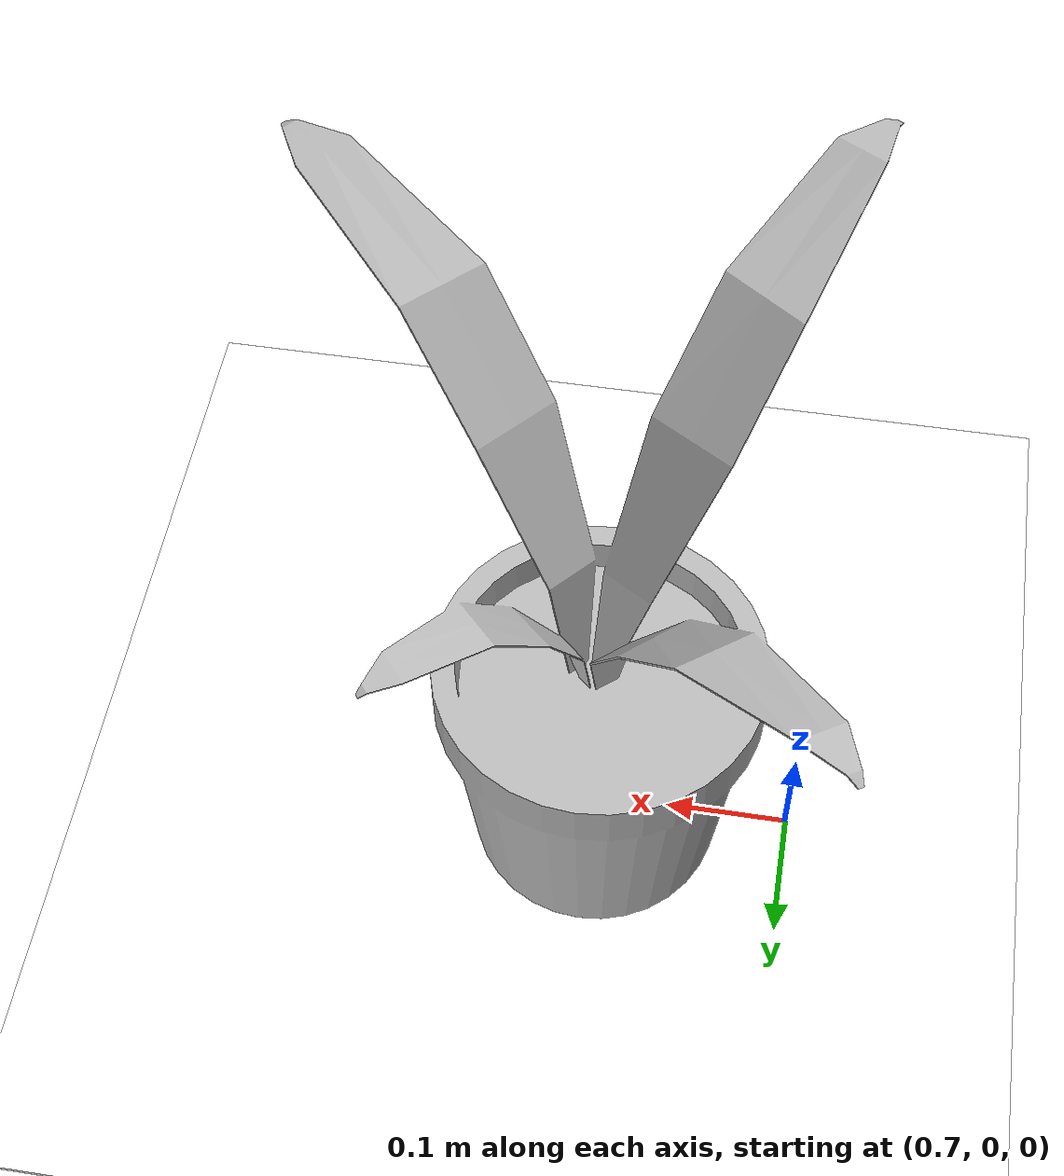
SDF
<?xml version="1.0" ?>
<sdf version="1.8">
  <world name="leaf_bench">
    <plugin filename="ignition-gazebo-physics-system"
            name="gz::sim::systems::Physics"/>
    <plugin filename="ignition-gazebo-user-commands-system"
            name="gz::sim::systems::UserCommands"/>
    <plugin filename="ignition-gazebo-scene-broadcaster-system"
            name="gz::sim::systems::SceneBroadcaster"/>
    <plugin filename="ignition-gazebo-sensors-system"
            name="gz::sim::systems::Sensors">
      <render_engine>ogre2</render_engine>
    </plugin>
    <plugin filename="ignition-gazebo-contact-system"
            name="gz::sim::systems::Contact"/>

    <physics name="default_physics" type="ignored">
      <max_step_size>0.001</max_step_size>
      <real_time_factor>1.0</real_time_factor>
    </physics>
    <gravity>0 0 -9.81</gravity>
    <magnetic_field>0 0 0</magnetic_field>
    <scene>
      <ambient>0.6 0.6 0.6 1</ambient>
      <background>0.85 0.90 0.95 1</background>
      <shadows>true</shadows>
    </scene>

    <light type="directional" name="sun">
      <cast_shadows>true</cast_shadows>
      <pose>0 0 10 0 0 0</pose>
      <diffuse>0.8 0.8 0.8 1</diffuse>
      <specular>0.2 0.2 0.2 1</specular>
      <direction>-0.5 0.2 -0.9</direction>
    </light>

    <include>
      <uri>model://calibration_floor</uri>
    </include>

    <!-- The controllable ros2_control stack uses this world. Keep the same
         rigid, contact-instrumented plant pose as fixed_arm_empty.world. -->
    <include>
      <uri>model://simple_potted_plant</uri>
      <name>plant_in_front_of_arm</name>
      <pose>0.85 0.00 0 0 0 0</pose>
    </include>

  </world>
</sdf>

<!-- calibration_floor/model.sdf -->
<sdf version="1.8">
  <model name="calibration_floor">
    <static>true</static>
    <link name="floor_link">
      <collision name="floor_collision">
        <geometry>
          <plane>
            <normal>0 0 1</normal>
            <size>4 4</size>
          </plane>
        </geometry>
        <surface>
          <friction>
            <ode>
              <mu>100</mu>
              <mu2>50</mu2>
            </ode>
          </friction>
        </surface>
      </collision>
      <visual name="floor_visual">
        <cast_shadows>false</cast_shadows>
        <geometry>
          <plane>
            <normal>0 0 1</normal>
            <size>4 4</size>
          </plane>
        </geometry>
        <material>
          <ambient>1 1 1 1</ambient>
          <diffuse>1 1 1 1</diffuse>
          <specular>0.1 0.1 0.1 1</specular>
          <pbr>
            <metal>
              <albedo_map>materials/textures/calibration_floor.png</albedo_map>
              <roughness>0.8</roughness>
              <metalness>0.0</metalness>
            </metal>
          </pbr>
        </material>
      </visual>
    </link>
  </model>
</sdf>

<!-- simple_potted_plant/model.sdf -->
<sdf version="1.6">
  <model name="simple_potted_plant">
    <!-- The grasp test does not need plant deformation. Keeping the plant
         static avoids numerical drift and makes contact measurements repeatable. -->
    <static>true</static>
    <self_collide>false</self_collide>

    <link name="plant_link">
      <gravity>false</gravity>

      <visual name="plant_visual">
        <!-- Assimp exports Z_UP Collada as Y_UP OBJ; this restores Z_UP. -->
        <pose>0 0 0.0001 1.57079632679 0 0</pose>
        <geometry>
          <mesh>
            <uri>model://simple_potted_plant/meshes/FlowerPot_fortress.obj</uri>
            <scale>0.10 0.10 0.10</scale>
          </mesh>
        </geometry>
      </visual>

      <collision name="pot_collision">
        <pose>0 0 0.08 0 0 0</pose>
        <geometry><cylinder><radius>0.12</radius><length>0.16</length></cylinder></geometry>
        <surface>
          <friction><ode><mu>0.8</mu><mu2>0.8</mu2></ode></friction>
          <contact><ode><kp>1000000</kp><kd>10</kd><max_vel>0.01</max_vel><min_depth>0.001</min_depth></ode></contact>
        </surface>
      </collision>

      <collision name="leaf_1_segment_4_collision">
        <pose>-0.0985 -0.1630 0.5000 0 -0.4922 -2.1030</pose>
        <geometry><box><size>0.1265 0.0650 0.0080</size></box></geometry>
        <max_contacts>20</max_contacts>
        <surface>
          <friction><ode><mu>0.6</mu><mu2>0.6</mu2></ode></friction>
          <contact><ode><kp>200000</kp><kd>20</kd><max_vel>0.005</max_vel><min_depth>0.0005</min_depth></ode></contact>
        </surface>
      </collision>
      <collision name="leaf_2_segment_4_collision">
        <pose>0.1775 -0.1400 0.5025 0 -0.4632 -0.6889</pose>
        <geometry><box><size>0.1311 0.0650 0.0080</size></box></geometry>
        <max_contacts>20</max_contacts>
        <surface>
          <friction><ode><mu>0.6</mu><mu2>0.6</mu2></ode></friction>
          <contact><ode><kp>200000</kp><kd>20</kd><max_vel>0.005</max_vel><min_depth>0.0005</min_depth></ode></contact>
        </surface>
      </collision>
      <collision name="leaf_3_segment_4_collision">
        <pose>0.1080 0.1100 0.3825 0 -0.3591 0.8491</pose>
        <geometry><box><size>0.0791 0.0550 0.0080</size></box></geometry>
        <max_contacts>20</max_contacts>
        <surface>
          <friction><ode><mu>0.6</mu><mu2>0.6</mu2></ode></friction>
          <contact><ode><kp>200000</kp><kd>20</kd><max_vel>0.005</max_vel><min_depth>0.0005</min_depth></ode></contact>
        </surface>
      </collision>
      <collision name="leaf_4_segment_4_collision">
        <pose>-0.1035 0.1450 0.4365 0 -0.4283 2.3036</pose>
        <geometry><box><size>0.1115 0.0600 0.0080</size></box></geometry>
        <max_contacts>20</max_contacts>
        <surface>
          <friction><ode><mu>0.6</mu><mu2>0.6</mu2></ode></friction>
          <contact><ode><kp>200000</kp><kd>20</kd><max_vel>0.005</max_vel><min_depth>0.0005</min_depth></ode></contact>
        </surface>
      </collision>

      <collision name="leaf_1_segment_1_collision">
        <pose>0.0025 -0.0025 0.2425 0 -1.3262 -2.3562</pose>
        <geometry><box><size>0.0956 0.0200 0.0080</size></box></geometry>
        <max_contacts>20</max_contacts>
        <surface>
          <friction><ode><mu>0.6</mu><mu2>0.6</mu2></ode></friction>
          <contact><ode><kp>200000</kp><kd>20</kd><max_vel>0.005</max_vel><min_depth>0.0005</min_depth></ode></contact>
        </surface>
      </collision>
      <collision name="leaf_1_segment_2_collision">
        <pose>-0.0165 -0.0300 0.3350 0 -1.1385 -2.0926</pose>
        <geometry><box><size>0.1181 0.0350 0.0080</size></box></geometry>
        <max_contacts>20</max_contacts>
        <surface>
          <friction><ode><mu>0.6</mu><mu2>0.6</mu2></ode></friction>
          <contact><ode><kp>200000</kp><kd>20</kd><max_vel>0.005</max_vel><min_depth>0.0005</min_depth></ode></contact>
        </surface>
      </collision>
      <collision name="leaf_1_segment_3_collision">
        <pose>-0.0500 -0.0840 0.4285 0 -0.8211 -2.1451</pose>
        <geometry><box><size>0.1269 0.0500 0.0080</size></box></geometry>
        <max_contacts>20</max_contacts>
        <surface>
          <friction><ode><mu>0.6</mu><mu2>0.6</mu2></ode></friction>
          <contact><ode><kp>200000</kp><kd>20</kd><max_vel>0.005</max_vel><min_depth>0.0005</min_depth></ode></contact>
        </surface>
      </collision>
      <collision name="leaf_1_segment_5_collision">
        <pose>-0.1410 -0.2410 0.5290 0 -0.0273 -2.0222</pose>
        <geometry><box><size>0.0814 0.0450 0.0080</size></box></geometry>
        <max_contacts>20</max_contacts>
        <surface>
          <friction><ode><mu>0.6</mu><mu2>0.6</mu2></ode></friction>
          <contact><ode><kp>200000</kp><kd>20</kd><max_vel>0.005</max_vel><min_depth>0.0005</min_depth></ode></contact>
        </surface>
      </collision>
      <collision name="leaf_2_segment_1_collision">
        <pose>0.0305 -0.0025 0.2405 0 -1.3767 -1.0304</pose>
        <geometry><box><size>0.0987 0.0200 0.0080</size></box></geometry>
        <max_contacts>20</max_contacts>
        <surface>
          <friction><ode><mu>0.6</mu><mu2>0.6</mu2></ode></friction>
          <contact><ode><kp>200000</kp><kd>20</kd><max_vel>0.005</max_vel><min_depth>0.0005</min_depth></ode></contact>
        </surface>
      </collision>
      <collision name="leaf_2_segment_2_collision">
        <pose>0.0550 -0.0325 0.3375 0 -1.0502 -0.8442</pose>
        <geometry><box><size>0.1290 0.0350 0.0080</size></box></geometry>
        <max_contacts>20</max_contacts>
        <surface>
          <friction><ode><mu>0.6</mu><mu2>0.6</mu2></ode></friction>
          <contact><ode><kp>200000</kp><kd>20</kd><max_vel>0.005</max_vel><min_depth>0.0005</min_depth></ode></contact>
        </surface>
      </collision>
      <collision name="leaf_2_segment_3_collision">
        <pose>0.1050 -0.0800 0.4325 0 -0.8277 -0.6947</pose>
        <geometry><box><size>0.1234 0.0500 0.0080</size></box></geometry>
        <max_contacts>20</max_contacts>
        <surface>
          <friction><ode><mu>0.6</mu><mu2>0.6</mu2></ode></friction>
          <contact><ode><kp>200000</kp><kd>20</kd><max_vel>0.005</max_vel><min_depth>0.0005</min_depth></ode></contact>
        </surface>
      </collision>
      <collision name="leaf_2_segment_5_collision">
        <pose>0.2455 -0.1930 0.5275 0 0.0799 -0.6147</pose>
        <geometry><box><size>0.0706 0.0450 0.0080</size></box></geometry>
        <max_contacts>20</max_contacts>
        <surface>
          <friction><ode><mu>0.6</mu><mu2>0.6</mu2></ode></friction>
          <contact><ode><kp>200000</kp><kd>20</kd><max_vel>0.005</max_vel><min_depth>0.0005</min_depth></ode></contact>
        </surface>
      </collision>
      <collision name="leaf_3_segment_1_collision">
        <pose>0.0225 0.0190 0.2235 0 -1.3745 0.4993</pose>
        <geometry><box><size>0.0722 0.0180 0.0080</size></box></geometry>
        <max_contacts>20</max_contacts>
        <surface>
          <friction><ode><mu>0.6</mu><mu2>0.6</mu2></ode></friction>
          <contact><ode><kp>200000</kp><kd>20</kd><max_vel>0.005</max_vel><min_depth>0.0005</min_depth></ode></contact>
        </surface>
      </collision>
      <collision name="leaf_3_segment_2_collision">
        <pose>0.0415 0.0360 0.2875 0 -1.0315 0.8036</pose>
        <geometry><box><size>0.0837 0.0300 0.0080</size></box></geometry>
        <max_contacts>20</max_contacts>
        <surface>
          <friction><ode><mu>0.6</mu><mu2>0.6</mu2></ode></friction>
          <contact><ode><kp>200000</kp><kd>20</kd><max_vel>0.005</max_vel><min_depth>0.0005</min_depth></ode></contact>
        </surface>
      </collision>
      <collision name="leaf_3_segment_3_collision">
        <pose>0.0705 0.0675 0.3450 0 -0.8189 0.8459</pose>
        <geometry><box><size>0.0765 0.0450 0.0080</size></box></geometry>
        <max_contacts>20</max_contacts>
        <surface>
          <friction><ode><mu>0.6</mu><mu2>0.6</mu2></ode></friction>
          <contact><ode><kp>200000</kp><kd>20</kd><max_vel>0.005</max_vel><min_depth>0.0005</min_depth></ode></contact>
        </surface>
      </collision>
      <collision name="leaf_3_segment_5_collision">
        <pose>0.1395 0.1500 0.3940 0 0.0563 1.0062</pose>
        <geometry><box><size>0.0436 0.0350 0.0080</size></box></geometry>
        <max_contacts>20</max_contacts>
        <surface>
          <friction><ode><mu>0.6</mu><mu2>0.6</mu2></ode></friction>
          <contact><ode><kp>200000</kp><kd>20</kd><max_vel>0.005</max_vel><min_depth>0.0005</min_depth></ode></contact>
        </surface>
      </collision>
      <collision name="leaf_4_segment_1_collision">
        <pose>0.0025 0.0180 0.2165 0 -1.3564 1.8737</pose>
        <geometry><box><size>0.0868 0.0180 0.0080</size></box></geometry>
        <max_contacts>20</max_contacts>
        <surface>
          <friction><ode><mu>0.6</mu><mu2>0.6</mu2></ode></friction>
          <contact><ode><kp>200000</kp><kd>20</kd><max_vel>0.005</max_vel><min_depth>0.0005</min_depth></ode></contact>
        </surface>
      </collision>
      <collision name="leaf_4_segment_2_collision">
        <pose>-0.0150 0.0455 0.3000 0 -1.0705 2.2265</pose>
        <geometry><box><size>0.1106 0.0320 0.0080</size></box></geometry>
        <max_contacts>20</max_contacts>
        <surface>
          <friction><ode><mu>0.6</mu><mu2>0.6</mu2></ode></friction>
          <contact><ode><kp>200000</kp><kd>20</kd><max_vel>0.005</max_vel><min_depth>0.0005</min_depth></ode></contact>
        </surface>
      </collision>
      <collision name="leaf_4_segment_3_collision">
        <pose>-0.0510 0.0875 0.3800 0 -0.8495 2.3217</pose>
        <geometry><box><size>0.1012 0.0480 0.0080</size></box></geometry>
        <max_contacts>20</max_contacts>
        <surface>
          <friction><ode><mu>0.6</mu><mu2>0.6</mu2></ode></friction>
          <contact><ode><kp>200000</kp><kd>20</kd><max_vel>0.005</max_vel><min_depth>0.0005</min_depth></ode></contact>
        </surface>
      </collision>
      <collision name="leaf_4_segment_5_collision">
        <pose>-0.1535 0.1975 0.4550 0 0.1173 2.3840</pose>
        <geometry><box><size>0.0593 0.0400 0.0080</size></box></geometry>
        <max_contacts>20</max_contacts>
        <surface>
          <friction><ode><mu>0.6</mu><mu2>0.6</mu2></ode></friction>
          <contact><ode><kp>200000</kp><kd>20</kd><max_vel>0.005</max_vel><min_depth>0.0005</min_depth></ode></contact>
        </surface>
      </collision>

      <sensor name="leaf_1_segment_4_contact_sensor" type="contact">
        <always_on>true</always_on><update_rate>100</update_rate>
        <contact><collision>leaf_1_segment_4_collision</collision><topic>/plant/leaf_1_contacts_gz</topic></contact>
      </sensor>
      <sensor name="leaf_2_segment_4_contact_sensor" type="contact">
        <always_on>true</always_on><update_rate>100</update_rate>
        <contact><collision>leaf_2_segment_4_collision</collision><topic>/plant/leaf_2_contacts_gz</topic></contact>
      </sensor>
      <sensor name="leaf_3_segment_4_contact_sensor" type="contact">
        <always_on>true</always_on><update_rate>100</update_rate>
        <contact><collision>leaf_3_segment_4_collision</collision><topic>/plant/leaf_3_contacts_gz</topic></contact>
      </sensor>
      <sensor name="leaf_4_segment_4_contact_sensor" type="contact">
        <always_on>true</always_on><update_rate>100</update_rate>
        <contact><collision>leaf_4_segment_4_collision</collision><topic>/plant/leaf_4_contacts_gz</topic></contact>
      </sensor>
      <!-- Every proxy has a contact sensor. The five publishers for one leaf
           intentionally share one ROS topic so callers only monitor four topics. -->
      <sensor name="leaf_1_segment_1_contact_sensor" type="contact">
        <always_on>true</always_on><update_rate>100</update_rate>
        <contact><collision>leaf_1_segment_1_collision</collision><topic>/plant/leaf_1_contacts_gz</topic></contact>
      </sensor>
      <sensor name="leaf_1_segment_2_contact_sensor" type="contact">
        <always_on>true</always_on><update_rate>100</update_rate>
        <contact><collision>leaf_1_segment_2_collision</collision><topic>/plant/leaf_1_contacts_gz</topic></contact>
      </sensor>
      <sensor name="leaf_1_segment_3_contact_sensor" type="contact">
        <always_on>true</always_on><update_rate>100</update_rate>
        <contact><collision>leaf_1_segment_3_collision</collision><topic>/plant/leaf_1_contacts_gz</topic></contact>
      </sensor>
      <sensor name="leaf_1_segment_5_contact_sensor" type="contact">
        <always_on>true</always_on><update_rate>100</update_rate>
        <contact><collision>leaf_1_segment_5_collision</collision><topic>/plant/leaf_1_contacts_gz</topic></contact>
      </sensor>
      <sensor name="leaf_2_segment_1_contact_sensor" type="contact">
        <always_on>true</always_on><update_rate>100</update_rate>
        <contact><collision>leaf_2_segment_1_collision</collision><topic>/plant/leaf_2_contacts_gz</topic></contact>
      </sensor>
      <sensor name="leaf_2_segment_2_contact_sensor" type="contact">
        <always_on>true</always_on><update_rate>100</update_rate>
        <contact><collision>leaf_2_segment_2_collision</collision><topic>/plant/leaf_2_contacts_gz</topic></contact>
      </sensor>
      <sensor name="leaf_2_segment_3_contact_sensor" type="contact">
        <always_on>true</always_on><update_rate>100</update_rate>
        <contact><collision>leaf_2_segment_3_collision</collision><topic>/plant/leaf_2_contacts_gz</topic></contact>
      </sensor>
      <sensor name="leaf_2_segment_5_contact_sensor" type="contact">
        <always_on>true</always_on><update_rate>100</update_rate>
        <contact><collision>leaf_2_segment_5_collision</collision><topic>/plant/leaf_2_contacts_gz</topic></contact>
      </sensor>
      <sensor name="leaf_3_segment_1_contact_sensor" type="contact">
        <always_on>true</always_on><update_rate>100</update_rate>
        <contact><collision>leaf_3_segment_1_collision</collision><topic>/plant/leaf_3_contacts_gz</topic></contact>
      </sensor>
      <sensor name="leaf_3_segment_2_contact_sensor" type="contact">
        <always_on>true</always_on><update_rate>100</update_rate>
        <contact><collision>leaf_3_segment_2_collision</collision><topic>/plant/leaf_3_contacts_gz</topic></contact>
      </sensor>
      <sensor name="leaf_3_segment_3_contact_sensor" type="contact">
        <always_on>true</always_on><update_rate>100</update_rate>
        <contact><collision>leaf_3_segment_3_collision</collision><topic>/plant/leaf_3_contacts_gz</topic></contact>
      </sensor>
      <sensor name="leaf_3_segment_5_contact_sensor" type="contact">
        <always_on>true</always_on><update_rate>100</update_rate>
        <contact><collision>leaf_3_segment_5_collision</collision><topic>/plant/leaf_3_contacts_gz</topic></contact>
      </sensor>
      <sensor name="leaf_4_segment_1_contact_sensor" type="contact">
        <always_on>true</always_on><update_rate>100</update_rate>
        <contact><collision>leaf_4_segment_1_collision</collision><topic>/plant/leaf_4_contacts_gz</topic></contact>
      </sensor>
      <sensor name="leaf_4_segment_2_contact_sensor" type="contact">
        <always_on>true</always_on><update_rate>100</update_rate>
        <contact><collision>leaf_4_segment_2_collision</collision><topic>/plant/leaf_4_contacts_gz</topic></contact>
      </sensor>
      <sensor name="leaf_4_segment_3_contact_sensor" type="contact">
        <always_on>true</always_on><update_rate>100</update_rate>
        <contact><collision>leaf_4_segment_3_collision</collision><topic>/plant/leaf_4_contacts_gz</topic></contact>
      </sensor>
      <sensor name="leaf_4_segment_5_contact_sensor" type="contact">
        <always_on>true</always_on><update_rate>100</update_rate>
        <contact><collision>leaf_4_segment_5_collision</collision><topic>/plant/leaf_4_contacts_gz</topic></contact>
      </sensor>

    </link>
  </model>
</sdf>
